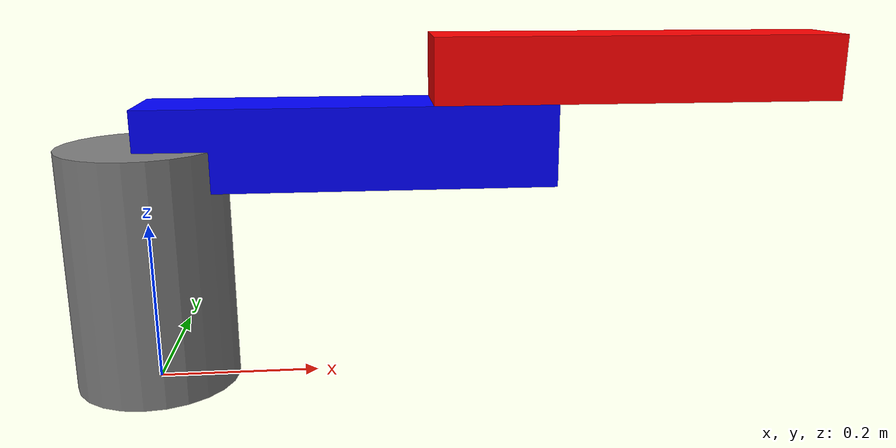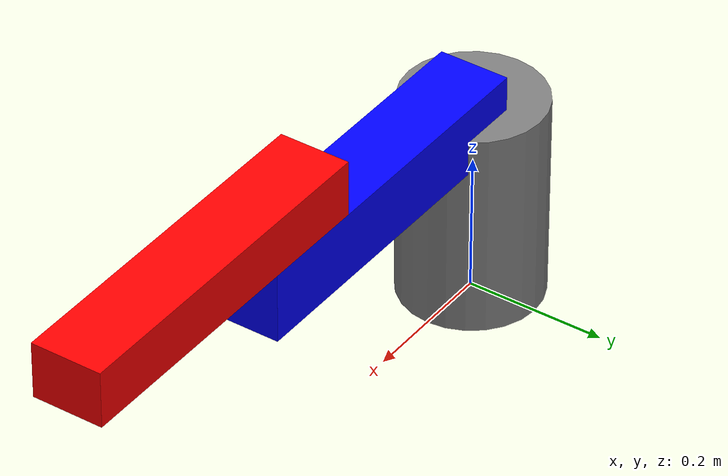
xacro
<?xml version="1.0"?>
<robot xmlns:xacro="http://www.ros.org/wiki/xacro" name="two_link_manipulator">
    <!-- メカ構造の定義 -->
    <link name="world"/>

    <!-- worldとbase_linkを固定するジョイント -->
    <joint name="fixed" type="fixed">
        <parent link="world"/>
        <child link="base_link"/>
        <origin xyz="0 0 0.15" rpy="0 0 0"/>
    </joint>

    <!-- ベースリンク -->
    <link name="base_link">
        <visual>
            <geometry>
                <cylinder radius="0.1" length="0.3"/>
            </geometry>
            <material name="gray">
                <color rgba="0.5 0.5 0.5 1"/>
            </material>
        </visual>
        <collision>
            <geometry>
                <cylinder radius="0.1" length="0.3"/>
            </geometry>
        </collision>
        <inertial>
            <mass value="1.0"/>
            <inertia ixx="0.01" ixy="0" ixz="0" iyy="0.01" iyz="0" izz="0.01"/>
        </inertial>
    </link>

    <gazebo reference="base_link">
        <material>Gazebo/Gray</material>
    </gazebo>

    <!-- リンク1 -->
    <link name="link1">
        <visual>
            <geometry>
                <box size="0.5 0.1 0.1"/>
            </geometry>
            <origin xyz="0.25 0 0" rpy="0 0 0"/>
            <material name="blue">
                <color rgba="0 0 1 1"/>
            </material>
        </visual>
        <collision>
            <geometry>
                <box size="0.5 0.1 0.1"/>
            </geometry>
            <origin xyz="0.25 0 0" rpy="0 0 0"/>
        </collision>
        <inertial>
            <mass value="1.0"/>
            <origin xyz="0.25 0 0" rpy="0 0 0"/>
            <inertia ixx="0.0841" ixy="0" ixz="0"
                     iyy="0.0841" iyz="0"
                     izz="0.0041"/>
        </inertial>
    </link>

    <gazebo reference="link1">
        <material>Gazebo/Blue</material>
    </gazebo>

    <!-- リンク2 -->
    <link name="link2">
        <visual>
            <geometry>
                <box size="0.5 0.1 0.08"/>
            </geometry>
            <origin xyz="0.1 0 0" rpy="0 0 0"/>
            <material name="red">
                <color rgba="1 0 0 1"/>
            </material>
        </visual>
        <collision>
            <geometry>
                <box size="0.5 0.1 0.08"/>
            </geometry>
            <origin xyz="0.1 0 0" rpy="0 0 0"/>
        </collision>
        <inertial>
            <mass value="1.0"/>
            <origin xyz="0.1 0 0" rpy="0 0 0"/>
            <inertia ixx="0.0841" ixy="0" ixz="0"
                     iyy="0.0841" iyz="0"
                     izz="0.0041"/>
        </inertial>
    </link>

    <gazebo reference="link2">
        <material>Gazebo/Red</material>
    </gazebo>

    <!-- ジョイント1（ベース→リンク1） -->
    <joint name="joint1" type="revolute">
        <parent link="base_link"/>
        <child link="link1"/>
        <origin xyz="0 0 0.15" rpy="0 0 0"/>
        <axis xyz="0 0 1"/>
        <limit lower="-3.14" upper="3.14" effort="100" velocity="100.0"/>
        <dynamics damping="0.7" friction="0.5"/>
    </joint>

    <!-- ジョイント2（リンク1→リンク2） -->
    <joint name="joint2" type="revolute">
        <parent link="link1"/>
        <child link="link2"/>
        <origin xyz="0.5 0 0.09" rpy="0 0 0"/>
        <axis xyz="0 0 1"/>
        <limit lower="-3.14" upper="3.14" effort="100" velocity="100.0"/>
        <dynamics damping="0.7" friction="0.5"/>
    </joint>

    <!-- ジョイント1のtransmission -->
    <transmission name="joint1_trans">
        <type>transmission_interface/SimpleTransmission</type>
        <joint name="joint1">
            <hardwareInterface>hardware_interface/EffortJointInterface</hardwareInterface>
        </joint>
        <actuator name="joint1_motor">
            <mechanicalReduction>1</mechanicalReduction>
        </actuator>
    </transmission>

    <!-- ジョイント2のtransmission -->
    <transmission name="joint2_trans">
        <type>transmission_interface/SimpleTransmission</type>
        <joint name="joint2">
            <hardwareInterface>hardware_interface/EffortJointInterface</hardwareInterface>
        </joint>
        <actuator name="joint2_motor">
            <mechanicalReduction>1</mechanicalReduction>
        </actuator>
    </transmission>

    <!-- Gazeboの物理設定を追加 -->
    <gazebo reference="joint1">
        <implicitSpringDamper>true</implicitSpringDamper>
        <provideFeedback>true</provideFeedback>
    </gazebo>

    <gazebo reference="joint2">
        <implicitSpringDamper>true</implicitSpringDamper>
        <provideFeedback>true</provideFeedback>
    </gazebo>
</robot>
